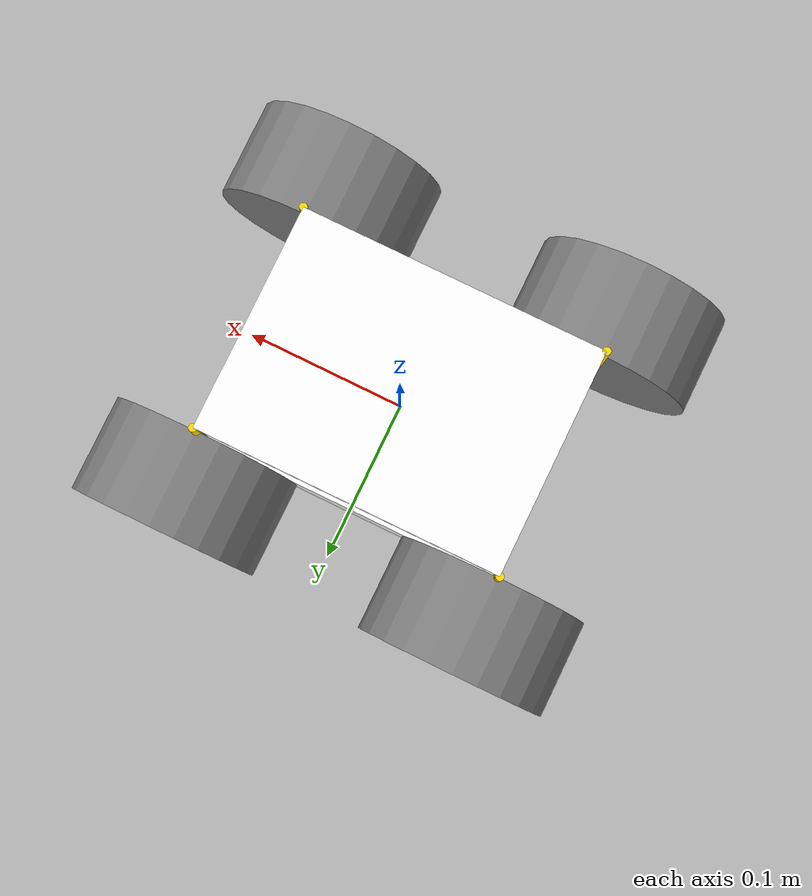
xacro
<?xml version="1.0"?>
<robot name="fyp_kal_robot" xmlns:xacro="http://www.ros.org/wiki/xacro" xmlns:gazebo="http://playerstage.sourceforge.net/gazebo/xmlschema/#">

  <xacro:include filename="kal_gazebo.xacro" />

  <!-- Define robot constants -->
  <xacro:property name="base_width" value="0.14"/>
  <xacro:property name="base_length" value="0.19"/>
  <xacro:property name="base_height" value="0.035"/>
  <xacro:property name="top_layer_height" value="0.005"/>
  <xacro:property name="standoff_radius" value="0.0025"/>
  <xacro:property name="standoff_height" value="0.06"/>
  <xacro:property name="wheel_radius" value="0.06"/>
  <xacro:property name="wheel_width" value="0.06"/>
  <xacro:property name="wheel_ygap" value="0.03"/>
  <xacro:property name="wheel_zoff" value="0.0"/>
  <xacro:property name="wheel_xoff" value="0.0"/>

  <!-- Robot Base -->
  <link name="base_link">
    <visual>
      <geometry>
        <box size="${base_length} ${base_width} ${base_height}"/>
      </geometry>
      <material name="White">
        <color rgba="1.0 1.0 1.0 1.0"/>
      </material>
    </visual>
    <collision>
      <geometry>
        <box size="${base_length} ${base_width} ${base_height}"/>
      </geometry>
    </collision>
    <inertial>
      <mass value="1.0"/>
      <origin xyz="0 0 0" rpy="0 0 0"/>
      <inertia ixx="0.01" iyy="0.01" izz="0.01" ixy="0.0" ixz="0.0" iyz="0.0"/>
    </inertial>
  </link>

  <!-- Top Layer -->
  <link name="top_layer">
    <visual>
      <geometry>
        <box size="${base_length} ${base_width} ${top_layer_height}"/>
      </geometry>
      <material name="White">
        <color rgba="1.0 1.0 1.0 1.0"/>
      </material>
    </visual>
    <collision>
      <geometry>
        <box size="${base_length} ${base_width} ${top_layer_height}"/>
      </geometry>
    </collision>
    <inertial>
      <mass value="0.1"/>
      <origin xyz="0 0 0" rpy="0 0 0"/>
      <inertia ixx="0.001" iyy="0.001" izz="0.001" ixy="0.0" ixz="0.0" iyz="0.0"/>
    </inertial>
  </link>

  <!-- Standoffs -->
  <xacro:macro name="standoff" params="prefix x y">
    <link name="${prefix}_standoff">
      <visual>
        <origin xyz="0 0 0" rpy="0 0 0"/>
        <geometry>
          <cylinder radius="${standoff_radius}" length="${standoff_height}"/>
        </geometry>
        <material name="Gold">
          <color rgba="1 0.843 0 1.0"/>
        </material>
      </visual>
      <collision>
        <geometry>
          <cylinder radius="${standoff_radius}" length="${standoff_height}"/>
        </geometry>
      </collision>
      <inertial>
        <mass value="0.005"/>
        <origin xyz="0 0 0" rpy="0 0 0"/>
        <inertia ixx="0.00001" iyy="0.00001" izz="0.00001" ixy="0.0" ixz="0.0" iyz="0.0"/>
      </inertial>
    </link>
    <joint name="${prefix}_standoff_joint" type="fixed">
      <parent link="base_link"/>
      <child link="${prefix}_standoff"/>
      <origin xyz="${x} ${y} ${(base_height/2 + standoff_height/2)}" rpy="0 0 0"/>
    </joint>
  </xacro:macro>

  <xacro:standoff prefix="front_left" x="${base_length/2}" y="${base_width/2}"/>
  <xacro:standoff prefix="front_right" x="${base_length/2}" y="${-base_width/2}"/>
  <xacro:standoff prefix="rear_left" x="${-base_length/2}" y="${base_width/2}"/>
  <xacro:standoff prefix="rear_right" x="${-base_length/2}" y="${-base_width/2}"/>

  <!-- Top Layer Joint -->
  <joint name="top_layer_joint" type="fixed">
    <parent link="base_link"/>
    <child link="top_layer"/>
    <origin xyz="0 0 ${(base_height + standoff_height - 0.02)}" rpy="0 0 0"/>
  </joint>

  <!-- Wheels -->
  <xacro:macro name="wheel" params="prefix x_reflect y_reflect">
    <link name="${prefix}_link">
      <visual>
        <origin xyz="0 0 0" rpy="${pi/2} 0 0"/>
        <geometry>
            <cylinder radius="${wheel_radius}" length="${wheel_width}"/>
        </geometry>
        <material name="Gray">
          <color rgba="0.5 0.5 0.5 1.0"/>
        </material>
      </visual>
      <collision>
        <geometry>
            <cylinder radius="${wheel_radius}" length="${wheel_width}"/>
        </geometry>
      </collision>
      <inertial>
        <mass value="0.1"/> <!-- Adjust the mass as needed -->
        <origin xyz="0 0 0" rpy="0 0 0"/>
        <inertia ixx="0.001" iyy="0.001" izz="0.001" ixy="0.0" ixz="0.0" iyz="0.0"/>
      </inertial>
    </link>

    <joint name="${prefix}_joint" type="continuous">
      <parent link="base_link"/>
      <child link="${prefix}_link"/>
      <origin xyz="${x_reflect*(wheel_xoff + (base_length/2))} ${y_reflect*(base_width/2+wheel_ygap)} ${wheel_zoff}" rpy="0 0 0"/>
      <axis xyz="0 1 0"/>
    </joint>
  </xacro:macro>

  <xacro:wheel prefix="drivewhl_l" x_reflect="1" y_reflect="1" />
  <xacro:wheel prefix="drivewhl_r" x_reflect="1" y_reflect="-1" />
  <xacro:wheel prefix="rearwhl_l" x_reflect="-1" y_reflect="1" />
  <xacro:wheel prefix="rearwhl_r" x_reflect="-1" y_reflect="-1" />
</robot>
